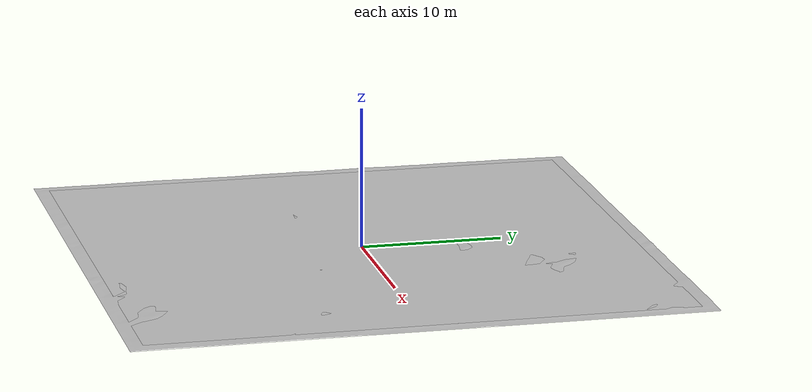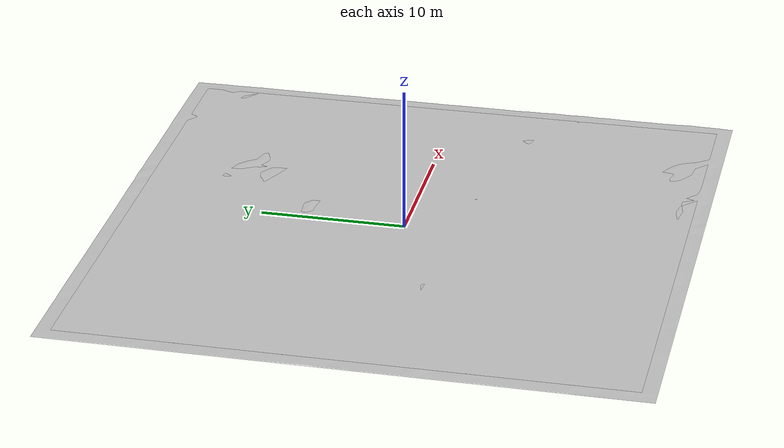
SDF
<?xml version="1.0" ?>
<sdf version="1.4">
  <model name="grassAss">
    <static>true</static>
    <link name="link">
      <pose>0 0 0 0 0 1.57</pose>
      <must_be_base_link>1</must_be_base_link>
      <collision name="collision">
        <geometry>
          <mesh>
            <scale>1 1 1</scale>
            <uri>model://grass/meshes/grass.DAE</uri>
          </mesh>
        </geometry>
        <surface>
          <friction>
            <ode>
              <mu>100</mu>
              <mu2>50</mu2>
            </ode>
          </friction>
        </surface>
      </collision>
      <visual name="visual">
        <cast_shadows>false</cast_shadows>
        <geometry>
          <mesh>
            <scale>1 1 1</scale>
            <uri>model://grass/meshes/grass.DAE</uri>
          </mesh>
        </geometry>
      </visual>
    </link>

    <link name="lines_link">
      <pose>0 0 0.075 0 0 0</pose>
      <must_be_base_link>1</must_be_base_link>
      <visual name="lines_visual">
        <cast_shadows>false</cast_shadows>
        <geometry>
          <box>
            <size>38 38 0.0001</size>
          </box>
        </geometry>
        <material>
          <script>
            <uri>model://grass/materials/scripts</uri>
            <uri>model://grass/materials/textures</uri>
            <name>grass/lines</name>
          </script>
        </material>
      </visual>
    </link>

  </model>
</sdf>
